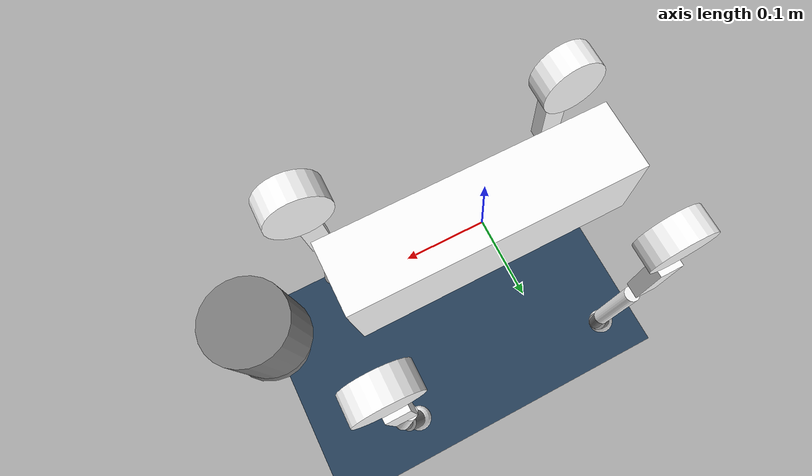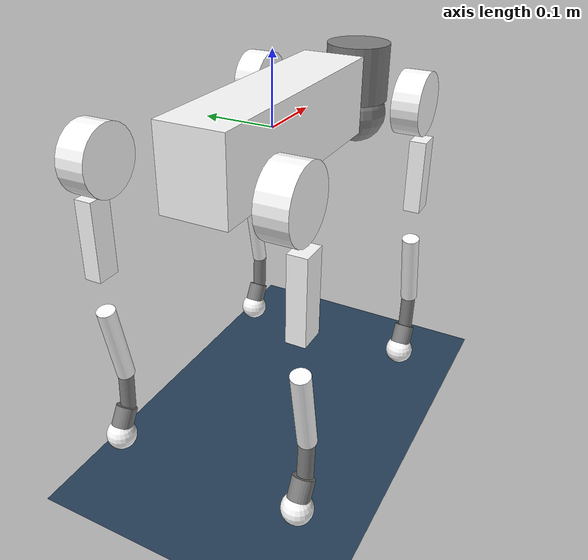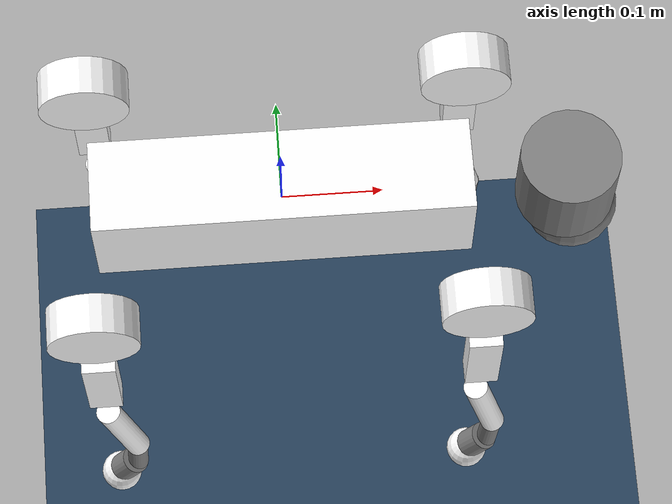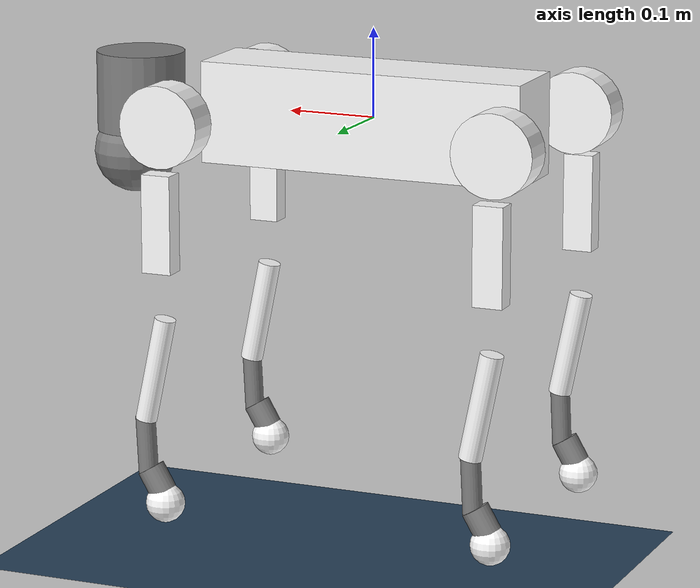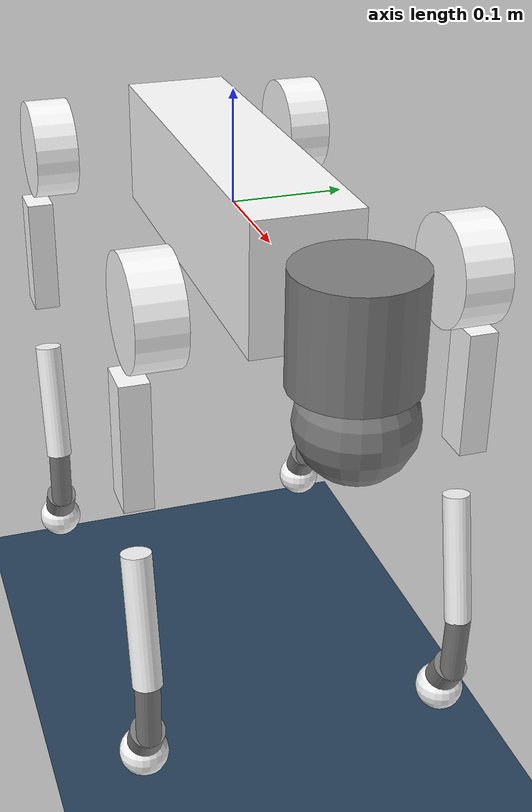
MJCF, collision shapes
<mujoco model="go2_description">
    <compiler angle="radian" meshdir="/home/yuchen/usetest/RL/cyberdog_gym/legged_gym/legged_gym/resources/robots/go2/meshes/" />
    <size njmax="500" nconmax="100" />
    <asset>
        <mesh name="base" file="base.stl" />
        <mesh name="hip" file="hip.stl" />
        <mesh name="thigh" file="thigh.stl" />
        <mesh name="calf" file="calf.stl" />
        <mesh name="foot" file="foot.stl" />
        <mesh name="thigh_mirror" file="thigh_mirror.stl" />
        <mesh name="calf_mirror" file="calf_mirror.stl" />
    </asset>

	<asset>
        <texture type="skybox" builtin="gradient" rgb1=".3 .5 .7" rgb2="0 0 0" width="512" height="512"/>
        <texture name="grid" type="2d" builtin="checker" width="512" height="512" rgb1=".1 .2 .3" rgb2=".2 .3 .4"/>
        <material name="grid" texture="grid" texrepeat="1 1" texuniform="true" reflectance=".2"/>
    </asset>

    <visual>
        <map fogstart="1.5" fogend="5" force="0.1" znear="0.1"/>
        <quality shadowsize="4096" offsamples="4"/>
        <headlight ambient="0.4 0.4 0.4"/>
    </visual>

    <worldbody>
        <geom name="floor" pos="0 0 -0.505" size="0 0 0.05" type="plane" material="grid" condim="3"/>
        <light castshadow="false" directional='true' diffuse='.3 .3 .3' specular='0.3 0.3 0.3' pos='-1 -1 1'
               dir='1 1 -1'/>
        <light directional='true' diffuse='.3 .3 .3' specular='0.3 0.3 0.3' pos='1 -1 1' dir='-1 1 -1'/>
        <light castshadow="false" directional='true' diffuse='.3 .3 .3' specular='0.3 0.3 0.3' pos='0 1 1'
               dir='0 -1 -1'/>

        <body name="base" pos="0 0 0">
            <inertial pos="0.0211894 0 -0.00537167" quat="-0.000544412 0.71347 -0.00173648 0.700684" mass="6.923" diaginertia="0.10719 0.098243 0.0244752" />
            <joint name="floating_base_joint" type="free" />
            <geom type="mesh" contype="0" conaffinity="0" group="1" rgba="1 1 1 1" mesh="base" />
            <geom size="0.1881 0.04675 0.057" type="box" rgba="1 1 1 1" />
            <geom size="0.05 0.045" pos="0.285 0 0.01" type="cylinder" />
            <geom size="0.047" pos="0.293 0 -0.06" />
            <site name="imu_site" pos="0 0 0" size="0.01" rgba="1 0 0 0"/>
            <body name="FL_hip" pos="0.1934 0.0465 0">
                <inertial pos="-0.0054 0.00194 -0.000105" quat="0.497014 0.499245 0.505462 0.498237" mass="0.678" diaginertia="0.00088403 0.000596003 0.000479967" />
                <joint name="FL_hip_joint" pos="0 0 0" axis="1 0 0" limited="true" range="-1.0472 1.0472" />
                <geom type="mesh" contype="0" conaffinity="0" group="1" rgba="1 1 1 1" mesh="hip" />
                <geom size="0.046 0.02" pos="0 0.08 0" quat="0.707107 0.707107 0 0" type="cylinder" rgba="1 1 1 1" />
                <body name="FL_thigh" pos="0 0.0955 0">
                    <inertial pos="-0.00374 -0.0223 -0.0327" quat="0.829533 0.0847635 -0.0200632 0.551623" mass="1.152" diaginertia="0.00594973 0.00584149 0.000878787" />
                    <joint name="FL_thigh_joint" pos="0 0 0" axis="0 1 0" limited="true" range="-1.5708 3.4907" />
                    <geom type="mesh" contype="0" conaffinity="0" group="1" rgba="1 1 1 1" mesh="thigh" />
                    <geom size="0.055 0.01225 0.017" pos="0 0 -0.1065" quat="0.707107 0 0.707107 0" type="box" rgba="1 1 1 1" />
                    <body name="FL_calf" pos="0 0 -0.213">
                        <inertial pos="0.00629595 -0.000622121 -0.141417" quat="0.710672 0.00154099 -0.00450087 0.703508" mass="0.241352" diaginertia="0.0014901 0.00146356 5.31397e-05" />
                        <joint name="FL_calf_joint" pos="0 0 0" axis="0 1 0" limited="true" range="-2.7227 -0.83776" />
                        <geom type="mesh" contype="0" conaffinity="0" group="1" rgba="1 1 1 1" mesh="calf" />
                        <geom size="0.012 0.06" pos="0.008 0 -0.06" quat="0.994493 0 -0.104807 0" type="cylinder" rgba="1 1 1 1" />
                        <geom size="0.011 0.0325" pos="0.02 0 -0.148" quat="0.999688 0 0.0249974 0" type="cylinder" />
                        <geom size="0.0155 0.015" pos="0.00801333 0 -0.18745" quat="0.965093 0 0.261909 0" type="cylinder" />
                        <geom pos="0 0 -0.213" type="mesh" contype="0" conaffinity="0" group="1" rgba="1 1 1 1" mesh="foot" />
                        <geom size="0.022" pos="-0.002 0 -0.213" rgba="1 1 1 1" />
                    </body>
                </body>
            </body>
            <body name="FR_hip" pos="0.1934 -0.0465 0">
                <inertial pos="-0.0054 -0.00194 -0.000105" quat="0.498237 0.505462 0.499245 0.497014" mass="0.678" diaginertia="0.00088403 0.000596003 0.000479967" />
                <joint name="FR_hip_joint" pos="0 0 0" axis="1 0 0" limited="true" range="-1.0472 1.0472" />
                <geom quat="4.63268e-05 1 0 0" type="mesh" contype="0" conaffinity="0" group="1" rgba="1 1 1 1" mesh="hip" />
                <geom size="0.046 0.02" pos="0 -0.08 0" quat="0.707107 0.707107 0 0" type="cylinder" rgba="1 1 1 1" />
                <body name="FR_thigh" pos="0 -0.0955 0">
                    <inertial pos="-0.00374 0.0223 -0.0327" quat="0.551623 -0.0200632 0.0847635 0.829533" mass="1.152" diaginertia="0.00594973 0.00584149 0.000878787" />
                    <joint name="FR_thigh_joint" pos="0 0 0" axis="0 1 0" limited="true" range="-1.5708 3.4907" />
                    <geom type="mesh" contype="0" conaffinity="0" group="1" rgba="1 1 1 1" mesh="thigh_mirror" />
                    <geom size="0.055 0.01225 0.017" pos="0 0 -0.1065" quat="0.707107 0 0.707107 0" type="box" rgba="1 1 1 1" />
                    <body name="FR_calf" pos="0 0 -0.213">
                        <inertial pos="0.00629595 0.000622121 -0.141417" quat="0.703508 -0.00450087 0.00154099 0.710672" mass="0.241352" diaginertia="0.0014901 0.00146356 5.31397e-05" />
                        <joint name="FR_calf_joint" pos="0 0 0" axis="0 1 0" limited="true" range="-2.7227 -0.83776" />
                        <geom type="mesh" contype="0" conaffinity="0" group="1" rgba="1 1 1 1" mesh="calf_mirror" />
                        <geom size="0.013 0.06" pos="0.01 0 -0.06" quat="0.995004 0 -0.0998334 0" type="cylinder" rgba="1 1 1 1" />
                        <geom size="0.011 0.0325" pos="0.02 0 -0.148" quat="0.999688 0 0.0249974 0" type="cylinder" />
                        <geom size="0.0155 0.015" pos="0.00801333 0 -0.18745" quat="0.965093 0 0.261909 0" type="cylinder" />
                        <geom pos="0 0 -0.213" type="mesh" contype="0" conaffinity="0" group="1" rgba="1 1 1 1" mesh="foot" />
                        <geom size="0.022" pos="-0.002 0 -0.213" rgba="1 1 1 1" />
                    </body>
                </body>
            </body>
            <body name="RL_hip" pos="-0.1934 0.0465 0">
                <inertial pos="0.0054 0.00194 -0.000105" quat="0.505462 0.498237 0.497014 0.499245" mass="0.678" diaginertia="0.00088403 0.000596003 0.000479967" />
                <joint name="RL_hip_joint" pos="0 0 0" axis="1 0 0" limited="true" range="-1.0472 1.0472" />
                <geom quat="4.63268e-05 0 1 0" type="mesh" contype="0" conaffinity="0" group="1" rgba="1 1 1 1" mesh="hip" />
                <geom size="0.046 0.02" pos="0 0.08 0" quat="0.707107 0.707107 0 0" type="cylinder" rgba="1 1 1 1" />
                <body name="RL_thigh" pos="0 0.0955 0">
                    <inertial pos="-0.00374 -0.0223 -0.0327" quat="0.829533 0.0847635 -0.0200632 0.551623" mass="1.152" diaginertia="0.00594973 0.00584149 0.000878787" />
                    <joint name="RL_thigh_joint" pos="0 0 0" axis="0 1 0" limited="true" range="-0.5236 4.5379" />
                    <geom type="mesh" contype="0" conaffinity="0" group="1" rgba="1 1 1 1" mesh="thigh" />
                    <geom size="0.055 0.01225 0.017" pos="0 0 -0.1065" quat="0.707107 0 0.707107 0" type="box" rgba="1 1 1 1" />
                    <body name="RL_calf" pos="0 0 -0.213">
                        <inertial pos="0.00629595 -0.000622121 -0.141417" quat="0.710672 0.00154099 -0.00450087 0.703508" mass="0.241352" diaginertia="0.0014901 0.00146356 5.31397e-05" />
                        <joint name="RL_calf_joint" pos="0 0 0" axis="0 1 0" limited="true" range="-2.7227 -0.83776" />
                        <geom type="mesh" contype="0" conaffinity="0" group="1" rgba="1 1 1 1" mesh="calf" />
                        <geom size="0.013 0.06" pos="0.01 0 -0.06" quat="0.995004 0 -0.0998334 0" type="cylinder" rgba="1 1 1 1" />
                        <geom size="0.011 0.0325" pos="0.02 0 -0.148" quat="0.999688 0 0.0249974 0" type="cylinder" />
                        <geom size="0.0155 0.015" pos="0.00801333 0 -0.18745" quat="0.965093 0 0.261909 0" type="cylinder" />
                        <geom pos="0 0 -0.213" type="mesh" contype="0" conaffinity="0" group="1" rgba="1 1 1 1" mesh="foot" />
                        <geom size="0.022" pos="-0.002 0 -0.213" rgba="1 1 1 1" />
                    </body>
                </body>
            </body>
            <body name="RR_hip" pos="-0.1934 -0.0465 0">
                <inertial pos="0.0054 -0.00194 -0.000105" quat="0.499245 0.497014 0.498237 0.505462" mass="0.678" diaginertia="0.00088403 0.000596003 0.000479967" />
                <joint name="RR_hip_joint" pos="0 0 0" axis="1 0 0" limited="true" range="-1.0472 1.0472" />
                <geom quat="2.14617e-09 4.63268e-05 4.63268e-05 -1" type="mesh" contype="0" conaffinity="0" group="1" rgba="1 1 1 1" mesh="hip" />
                <geom size="0.046 0.02" pos="0 -0.08 0" quat="0.707107 0.707107 0 0" type="cylinder" rgba="1 1 1 1" />
                <body name="RR_thigh" pos="0 -0.0955 0">
                    <inertial pos="-0.00374 0.0223 -0.0327" quat="0.551623 -0.0200632 0.0847635 0.829533" mass="1.152" diaginertia="0.00594973 0.00584149 0.000878787" />
                    <joint name="RR_thigh_joint" pos="0 0 0" axis="0 1 0" limited="true" range="-0.5236 4.5379" />
                    <geom type="mesh" contype="0" conaffinity="0" group="1" rgba="1 1 1 1" mesh="thigh_mirror" />
                    <geom size="0.055 0.01225 0.017" pos="0 0 -0.1065" quat="0.707107 0 0.707107 0" type="box" rgba="1 1 1 1" />
                    <body name="RR_calf" pos="0 0 -0.213">
                        <inertial pos="0.00629595 0.000622121 -0.141417" quat="0.703508 -0.00450087 0.00154099 0.710672" mass="0.241352" diaginertia="0.0014901 0.00146356 5.31397e-05" />
                        <joint name="RR_calf_joint" pos="0 0 0" axis="0 1 0" limited="true" range="-2.7227 -0.83776" />
                        <geom type="mesh" contype="0" conaffinity="0" group="1" rgba="1 1 1 1" mesh="calf_mirror" />
                        <geom size="0.013 0.06" pos="0.01 0 -0.06" quat="0.995004 0 -0.0998334 0" type="cylinder" rgba="1 1 1 1" />
                        <geom size="0.011 0.0325" pos="0.02 0 -0.148" quat="0.999688 0 0.0249974 0" type="cylinder" />
                        <geom size="0.0155 0.015" pos="0.00801333 0 -0.18745" quat="0.965093 0 0.261909 0" type="cylinder" />
                        <geom pos="0 0 -0.213" type="mesh" contype="0" conaffinity="0" group="1" rgba="1 1 1 1" mesh="foot" />
                        <geom size="0.022" pos="-0.002 0 -0.213" rgba="1 1 1 1" />
                    </body>
                </body>
            </body>
        </body>
    </worldbody>

    <sensor>
        <framequat name="orientation" objtype="site" objname="imu_site"/>
        <frameangvel name="angular-velocity" objtype="site" objname="imu_site"/>
        <framelinvel name="linear-velocity" objtype="site" objname="imu_site"/>
    </sensor>

    <actuator>
        <motor name="FL_hip_joint" joint="FL_hip_joint" gear="1" ctrllimited="true" ctrlrange="-23.7 23.7"/>
        <motor name="FL_thigh_joint" joint="FL_thigh_joint" gear="1" ctrllimited="true" ctrlrange="-23.7 23.7"/>
        <motor name="FL_calf_joint" joint="FL_calf_joint" gear="1" ctrllimited="true" ctrlrange="-35.55 35.55"/>

        <motor name="FR_hip_joint" joint="FR_hip_joint" gear="1" ctrllimited="true" ctrlrange="-23.7 23.7"/>
        <motor name="FR_thigh_joint" joint="FR_thigh_joint" gear="1" ctrllimited="true" ctrlrange="-23.7 23.7"/>
        <motor name="FR_calf_joint" joint="FR_calf_joint" gear="1" ctrllimited="true" ctrlrange="-35.55 35.55"/>

        <motor name="RL_hip_joint" joint="RL_hip_joint" gear="1" ctrllimited="true" ctrlrange="-23.7 23.7"/>
        <motor name="RL_thigh_joint" joint="RL_thigh_joint" gear="1" ctrllimited="true" ctrlrange="-23.7 23.7"/>
        <motor name="RL_calf_joint" joint="RL_calf_joint" gear="1" ctrllimited="true" ctrlrange="-35.55 35.55"/>

        <motor name="RR_hip_joint" joint="RR_hip_joint" gear="1" ctrllimited="true" ctrlrange="-23.7 23.7"/>
        <motor name="RR_thigh_joint" joint="RR_thigh_joint" gear="1" ctrllimited="true" ctrlrange="-23.7 23.7"/>
        <motor name="RR_calf_joint" joint="RR_calf_joint" gear="1" ctrllimited="true" ctrlrange="-35.55 35.55"/>

    </actuator>

</mujoco>
